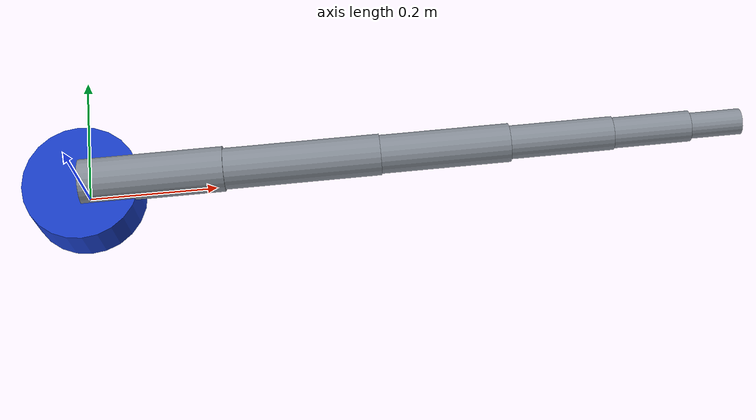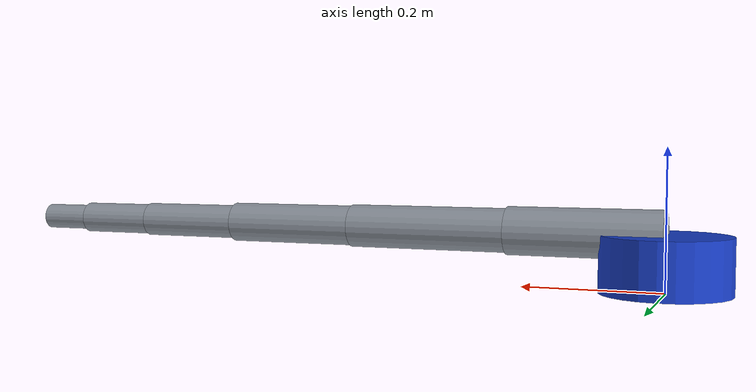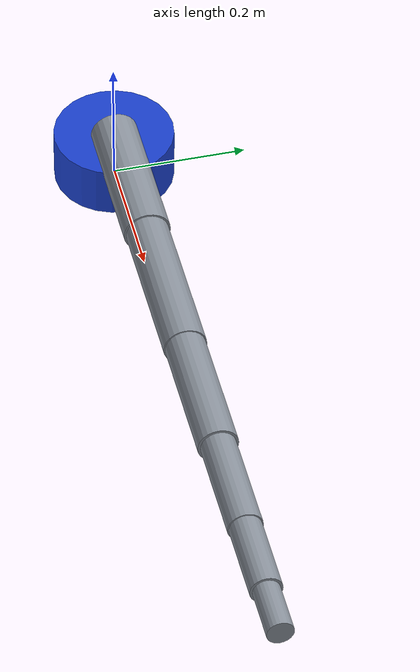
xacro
<?xml version="1.0"?>
<robot xmlns:xacro="http://www.ros.org/wiki/xacro" name="robomaster_arm">
  <xacro:arg name="serial_port" default="/dev/ttyACM0"/>
  <xacro:arg name="baud_rate" default="921600"/>
  <xacro:arg name="prefix" default=""/>

  <material name="arm_gray">
    <color rgba="0.55 0.58 0.62 1.0"/>
  </material>
  <material name="joint_blue">
    <color rgba="0.1 0.25 0.8 1.0"/>
  </material>

  <xacro:macro name="cylinder_link" params="name length radius mass">
    <link name="${name}">
      <visual>
        <origin xyz="${length / 2.0} 0 0" rpy="0 1.57079632679 0"/>
        <geometry>
          <cylinder length="${length}" radius="${radius}"/>
        </geometry>
        <material name="arm_gray"/>
      </visual>
      <collision>
        <origin xyz="${length / 2.0} 0 0" rpy="0 1.57079632679 0"/>
        <geometry>
          <cylinder length="${length}" radius="${radius}"/>
        </geometry>
      </collision>
      <inertial>
        <origin xyz="${length / 2.0} 0 0" rpy="0 0 0"/>
        <mass value="${mass}"/>
        <inertia ixx="0.01" ixy="0" ixz="0" iyy="0.01" iyz="0" izz="0.01"/>
      </inertial>
    </link>
  </xacro:macro>

  <link name="$(arg prefix)base_link">
    <visual>
      <origin xyz="0 0 0.04" rpy="0 0 0"/>
      <geometry>
        <cylinder length="0.08" radius="0.09"/>
      </geometry>
      <material name="joint_blue"/>
    </visual>
    <collision>
      <origin xyz="0 0 0.04" rpy="0 0 0"/>
      <geometry>
        <cylinder length="0.08" radius="0.09"/>
      </geometry>
    </collision>
    <inertial>
      <origin xyz="0 0 0.04" rpy="0 0 0"/>
      <mass value="1.0"/>
      <inertia ixx="0.02" ixy="0" ixz="0" iyy="0.02" iyz="0" izz="0.02"/>
    </inertial>
  </link>

  <xacro:cylinder_link name="$(arg prefix)link_1" length="0.22" radius="0.035" mass="0.5"/>
  <xacro:cylinder_link name="$(arg prefix)link_2" length="0.24" radius="0.032" mass="0.45"/>
  <xacro:cylinder_link name="$(arg prefix)link_3" length="0.20" radius="0.030" mass="0.35"/>
  <xacro:cylinder_link name="$(arg prefix)link_4" length="0.16" radius="0.026" mass="0.25"/>
  <xacro:cylinder_link name="$(arg prefix)link_5" length="0.12" radius="0.024" mass="0.20"/>
  <xacro:cylinder_link name="$(arg prefix)tool0" length="0.08" radius="0.020" mass="0.15"/>

  <joint name="$(arg prefix)joint_1" type="revolute">
    <parent link="$(arg prefix)base_link"/>
    <child link="$(arg prefix)link_1"/>
    <origin xyz="0 0 0.08" rpy="0 0 0"/>
    <axis xyz="0 0 1"/>
    <limit lower="-3.14159" upper="3.14159" effort="20" velocity="1.5"/>
  </joint>

  <joint name="$(arg prefix)joint_2" type="revolute">
    <parent link="$(arg prefix)link_1"/>
    <child link="$(arg prefix)link_2"/>
    <origin xyz="0.22 0 0" rpy="0 0 0"/>
    <axis xyz="0 1 0"/>
    <limit lower="-1.5708" upper="1.5708" effort="20" velocity="1.5"/>
  </joint>

  <joint name="$(arg prefix)joint_3" type="revolute">
    <parent link="$(arg prefix)link_2"/>
    <child link="$(arg prefix)link_3"/>
    <origin xyz="0.24 0 0" rpy="0 0 0"/>
    <axis xyz="0 1 0"/>
    <limit lower="-1.5708" upper="1.5708" effort="15" velocity="1.5"/>
  </joint>

  <joint name="$(arg prefix)joint_4" type="revolute">
    <parent link="$(arg prefix)link_3"/>
    <child link="$(arg prefix)link_4"/>
    <origin xyz="0.20 0 0" rpy="0 0 0"/>
    <axis xyz="1 0 0"/>
    <limit lower="-3.14159" upper="3.14159" effort="10" velocity="2.0"/>
  </joint>

  <joint name="$(arg prefix)joint_5" type="revolute">
    <parent link="$(arg prefix)link_4"/>
    <child link="$(arg prefix)link_5"/>
    <origin xyz="0.16 0 0" rpy="0 0 0"/>
    <axis xyz="0 1 0"/>
    <limit lower="-1.5708" upper="1.5708" effort="8" velocity="2.0"/>
  </joint>

  <joint name="$(arg prefix)joint_6" type="revolute">
    <parent link="$(arg prefix)link_5"/>
    <child link="$(arg prefix)tool0"/>
    <origin xyz="0.12 0 0" rpy="0 0 0"/>
    <axis xyz="1 0 0"/>
    <limit lower="-3.14159" upper="3.14159" effort="5" velocity="2.5"/>
  </joint>

  <ros2_control name="$(arg prefix)RoboMasterArmSystem" type="system">
    <hardware>
      <plugin>robomaster_arm_hw/RoboMasterArmSystemHardware</plugin>
      <param name="serial_port">$(arg serial_port)</param>
      <param name="baud_rate">$(arg baud_rate)</param>
      <param name="telemetry_timeout_ms">250</param>
      <param name="max_consecutive_dropouts">25</param>
    </hardware>

    <joint name="$(arg prefix)joint_1">
      <param name="motor_id">1</param>
      <param name="encoder_channel">0</param>
      <param name="joint_to_encoder_ratio">1.0</param>
      <command_interface name="position"/>
      <state_interface name="position"/>
      <state_interface name="velocity"/>
      <state_interface name="effort"/>
    </joint>

    <joint name="$(arg prefix)joint_2">
      <param name="motor_id">2</param>
      <param name="encoder_channel">1</param>
      <param name="joint_to_encoder_ratio">1.0</param>
      <command_interface name="position"/>
      <state_interface name="position"/>
      <state_interface name="velocity"/>
      <state_interface name="effort"/>
    </joint>

    <joint name="$(arg prefix)joint_3">
      <param name="motor_id">3</param>
      <param name="encoder_channel">2</param>
      <param name="joint_to_encoder_ratio">1.0</param>
      <command_interface name="position"/>
      <state_interface name="position"/>
      <state_interface name="velocity"/>
      <state_interface name="effort"/>
    </joint>

    <joint name="$(arg prefix)joint_4">
      <param name="motor_id">4</param>
      <param name="encoder_channel">3</param>
      <param name="joint_to_encoder_ratio">1.0</param>
      <command_interface name="position"/>
      <state_interface name="position"/>
      <state_interface name="velocity"/>
      <state_interface name="effort"/>
    </joint>

    <joint name="$(arg prefix)joint_5">
      <param name="motor_id">5</param>
      <param name="encoder_channel">4</param>
      <param name="joint_to_encoder_ratio">1.0</param>
      <command_interface name="position"/>
      <state_interface name="position"/>
      <state_interface name="velocity"/>
      <state_interface name="effort"/>
    </joint>

    <joint name="$(arg prefix)joint_6">
      <param name="motor_id">6</param>
      <param name="encoder_channel">5</param>
      <param name="joint_to_encoder_ratio">1.0</param>
      <command_interface name="position"/>
      <state_interface name="position"/>
      <state_interface name="velocity"/>
      <state_interface name="effort"/>
    </joint>
  </ros2_control>
</robot>
